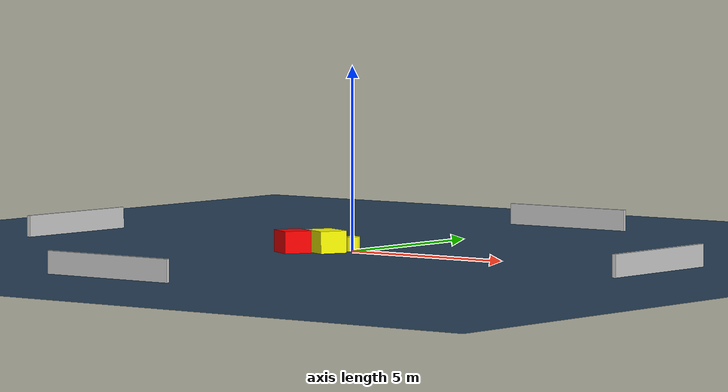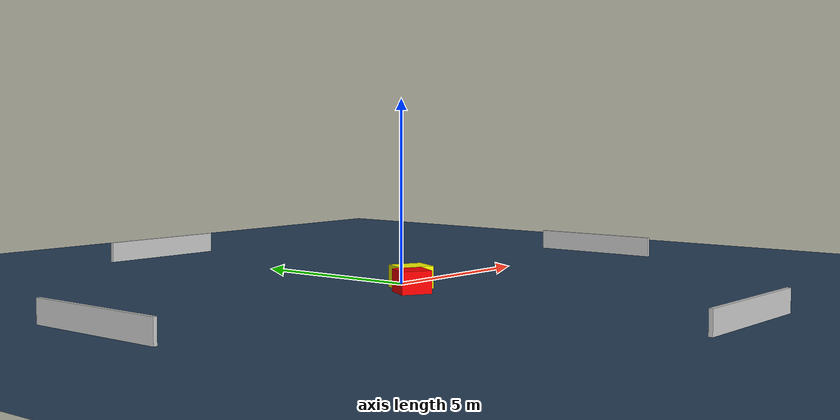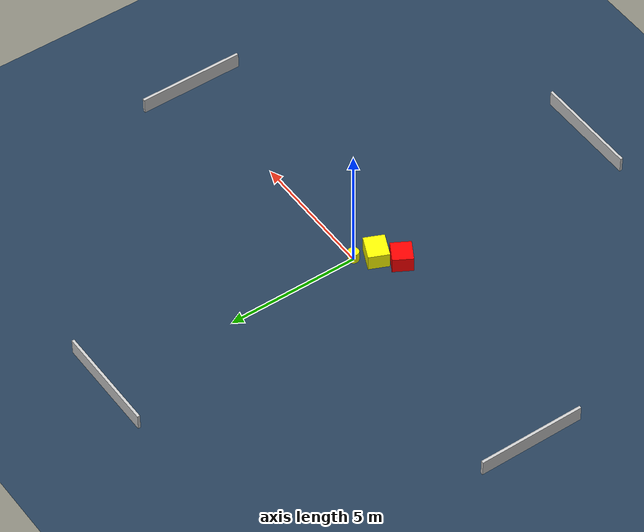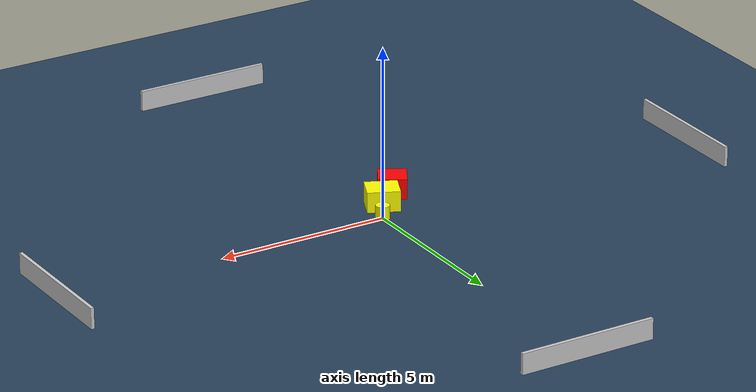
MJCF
<?xml version="1.0" ?>
<mujoco model="generated_environment">
  <option timestep="0.01" integrator="RK4" cone="elliptic"/>
  <default>
    <geom density="1"/>
  </default>
  <asset>
    <texture builtin="gradient" height="3072" name="skybox" rgb1="0.3 0.5 0.7" rgb2="0 0 0" type="skybox" width="512"/>
    <texture builtin="checker" height="300" name="groundplane" rgb1="0.2 0.3 0.4" rgb2="0.1 0.2 0.3" type="2d" width="300"/>
    <material name="groundplane" reflectance="0.2" texrepeat="5 5" texture="groundplane"/>
  </asset>
  <worldbody>
    <light dir="0 0 -1" directional="true" pos="0 0 1.5"/>
    <geom condim="3" friction="0.5 0.005 0.001" material="groundplane" name="floor" pos="0 0 0" size="0 0 0.05" type="plane"/>
    <body name="walls">
      <geom name="wall_1" condim="4" pos="-10.0 0.0 0.3" rgba="0.800000011920929 0.800000011920929 0.800000011920929 1.0" size="0.05 2.0 0.3" type="box"/>
      <geom name="wall_2" condim="4" pos="10.0 0.0 0.3" rgba="0.800000011920929 0.800000011920929 0.800000011920929 1.0" size="0.05 2.0 0.3" type="box"/>
      <geom name="wall_3" condim="4" pos="0.0 -10.0 0.3" rgba="0.800000011920929 0.800000011920929 0.800000011920929 1.0" size="2.0 0.05 0.3" type="box"/>
      <geom name="wall_4" condim="4" pos="0.0 10.0 0.3" rgba="0.800000011920929 0.800000011920929 0.800000011920929 1.0" size="2.0 0.05 0.3" type="box"/>
    </body>
    <body name="robot">
      <joint name="joint_x" type="slide" pos="0 0 0" axis="1 0 0"/>
      <joint name="joint_y" type="slide" pos="0 0 0" axis="0 1 0"/>
      <geom name="robot" type="cylinder" pos="0.0 0.0 0.2" size="0.2 0.2 0.0" mass="5.0" friction="1.0 0.005 0.0001" condim="4" rgba="1.0 1.0 0.0 1.0"/>
    </body>
    <body name="obstacle_1_movable">
      <geom name="obstacle_1_movable" condim="4" pos="-0.39747777794022066 -0.6701523008644897 0.3" euler="0 0 66.00577586611075" friction="0.0 0.005 0.001" rgba="1.0 1.0 0.0 1.0" size="0.38690809109250235 0.4679821278141503 0.3" type="box" mass="0.1"/>
      <joint type="free"/>
    </body>
    <body name="obstacle_2_static">
      <geom name="obstacle_2_static" condim="4" pos="-1.0717561806002265 -1.2510191097581334 0.3" euler="0 0 150.1240899227269" friction="0.0 0.005 0.001" rgba="1.0 0.0 0.0 1.0" size="0.4049148986256798 0.3769244703305017 0.3" type="box"/>
    </body>
  </worldbody>
  <actuator>
    <motor name="actuator_x" joint="joint_x" gear="1" ctrlrange="-1 1"/>
    <motor name="actuator_y" joint="joint_y" gear="1" ctrlrange="-1 1"/>
  </actuator>
</mujoco>
